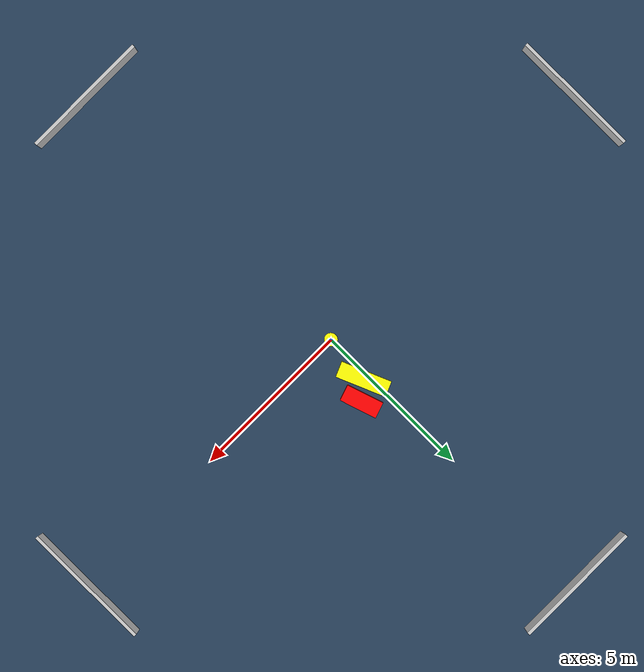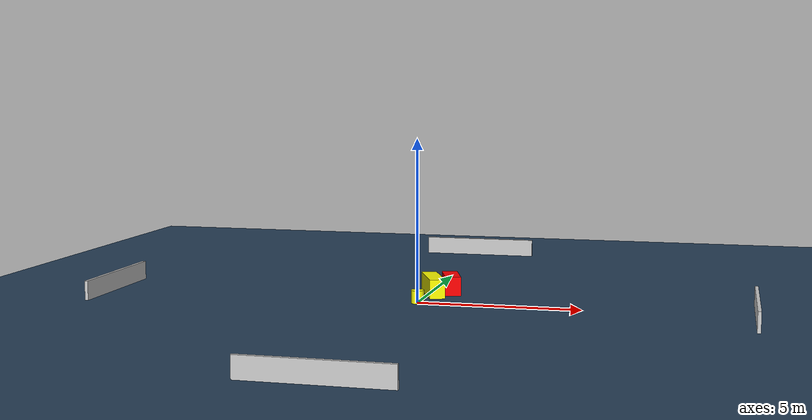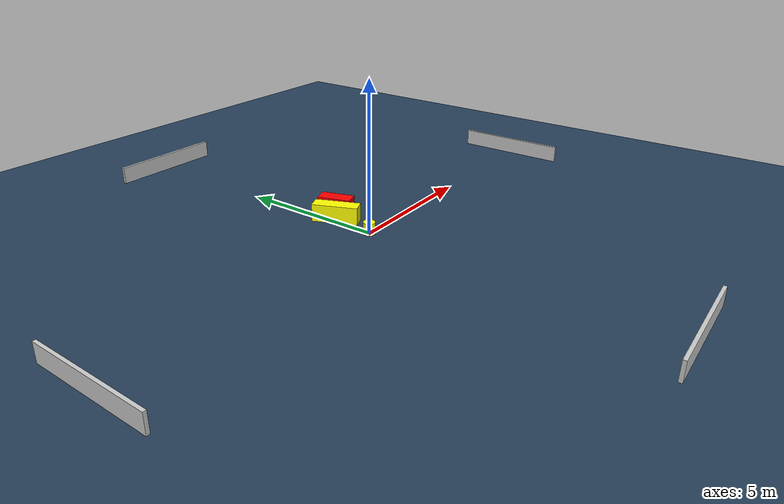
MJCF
<?xml version="1.0" ?>
<mujoco model="generated_environment">
  <option timestep="0.01" integrator="RK4" cone="elliptic"/>
  <default>
    <geom density="1"/>
  </default>
  <asset>
    <texture builtin="gradient" height="3072" name="skybox" rgb1="0.3 0.5 0.7" rgb2="0 0 0" type="skybox" width="512"/>
    <texture builtin="checker" height="300" name="groundplane" rgb1="0.2 0.3 0.4" rgb2="0.1 0.2 0.3" type="2d" width="300"/>
    <material name="groundplane" reflectance="0.2" texrepeat="5 5" texture="groundplane"/>
  </asset>
  <worldbody>
    <light dir="0 0 -1" directional="true" pos="0 0 1.5"/>
    <geom condim="3" friction="0.5 0.005 0.001" material="groundplane" name="floor" pos="0 0 0" size="0 0 0.05" type="plane"/>
    <body name="walls">
      <geom name="wall_1" condim="4" pos="-10.0 0.0 0.3" rgba="0.800000011920929 0.800000011920929 0.800000011920929 1.0" size="0.05 2.0 0.3" type="box"/>
      <geom name="wall_2" condim="4" pos="10.0 0.0 0.3" rgba="0.800000011920929 0.800000011920929 0.800000011920929 1.0" size="0.05 2.0 0.3" type="box"/>
      <geom name="wall_3" condim="4" pos="0.0 -10.0 0.3" rgba="0.800000011920929 0.800000011920929 0.800000011920929 1.0" size="2.0 0.05 0.3" type="box"/>
      <geom name="wall_4" condim="4" pos="0.0 10.0 0.3" rgba="0.800000011920929 0.800000011920929 0.800000011920929 1.0" size="2.0 0.05 0.3" type="box"/>
    </body>
    <body name="robot">
      <joint name="joint_x" type="slide" pos="0 0 0" axis="1 0 0"/>
      <joint name="joint_y" type="slide" pos="0 0 0" axis="0 1 0"/>
      <geom name="robot" type="cylinder" pos="0.0 0.0 0.2" size="0.2 0.2 0.0" mass="5.0" friction="1.0 0.005 0.0001" condim="4" rgba="1.0 1.0 0.0 1.0"/>
    </body>
    <body name="obstacle_1_movable">
      <geom name="obstacle_1_movable" condim="4" pos="0.1458506231943131 1.4696453424836133 0.3" euler="0 0 202.8114604434909" friction="0.0 0.005 0.001" rgba="1.0 1.0 0.0 1.0" size="0.24033324260967992 0.7713445939569621 0.3" type="box" mass="0.1"/>
      <joint type="free"/>
    </body>
    <body name="obstacle_2_static">
      <geom name="obstacle_2_static" condim="4" pos="0.6427993277838073 1.8839752600360304 0.3" euler="0 0 18.023885792942362" friction="0.0 0.005 0.001" rgba="1.0 0.0 0.0 1.0" size="0.24602090104118016 0.5700241742535839 0.3" type="box"/>
    </body>
  </worldbody>
  <actuator>
    <motor name="actuator_x" joint="joint_x" gear="1" ctrlrange="-1 1"/>
    <motor name="actuator_y" joint="joint_y" gear="1" ctrlrange="-1 1"/>
  </actuator>
</mujoco>
